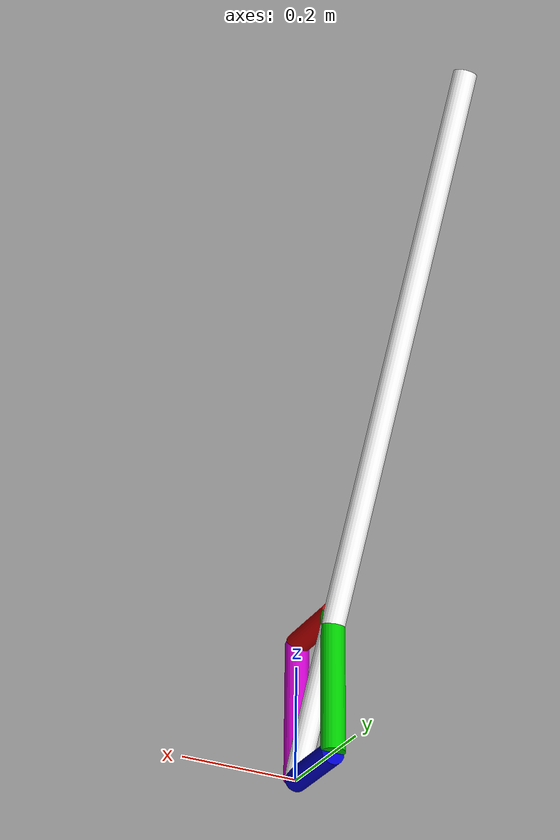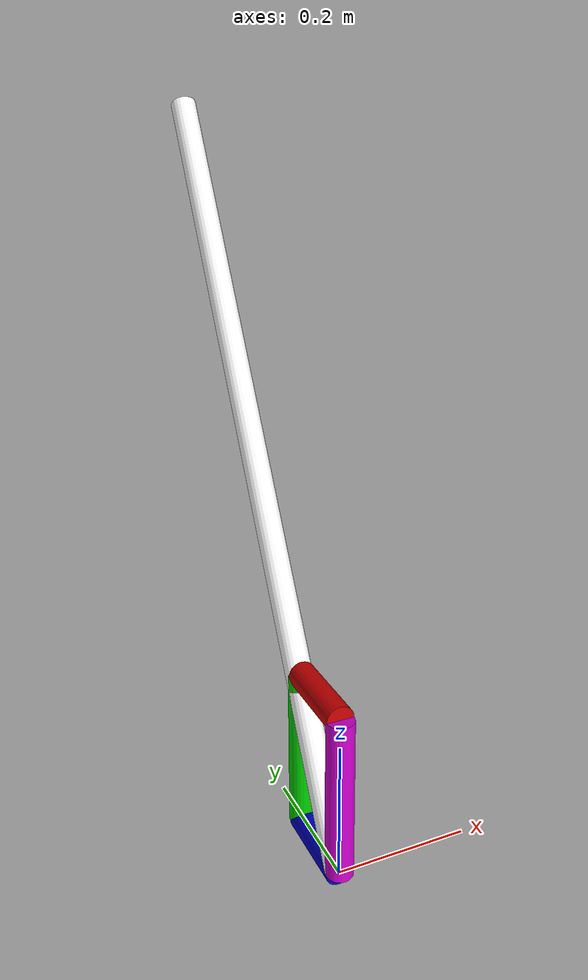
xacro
<?xml version="1.0"?>
<robot xmlns:xacro="http://www.ros.org/wiki/xacro" name="four_bar_elevator">
    <xacro:property name="theta" value="${pi/6}"/>
    <xacro:property name="L" value="1.2"/>
    <xacro:property name="b" value="0.127"/>
    <xacro:property name="h" value="0.243"/>

    <link name="base_link">
    </link>

    <link name="four_bar_base">
        <visual>
            <origin xyz="0 ${b/2} 0" rpy="${pi/2} 0 0" />
            <geometry>
                <cylinder radius="0.02" length="${b}" />
            </geometry>
            <material name="blue">
                <color rgba="0 0 .8 1" />
            </material>
        </visual>
    </link>

    <joint name="four_bar" type="revolute">
        <parent link="four_bar_base"/>
        <child link="link1"/>
        <origin xyz="0 0 0" rpy="0 0 0" />
        <axis xyz="1 0 0" />
        <limit lower="${-pi/2}" upper="${pi/2}" effort="0.5293" velocity="6.159937255" />
    </joint>

    <link name="link1">
        <visual>
            <origin xyz="0 0 ${h/2}" rpy="0 0 0" />
            <geometry>
                <cylinder radius="0.02" length="${h}" />
            </geometry>
            <material name="yellow">
                <color rgba=".8 0 .8 1" />
            </material>
        </visual>
    </link>

    <joint name="joint1" type="revolute">
        <parent link="four_bar_base"/>
        <child link="link2"/>
        <origin xyz="0 ${b} 0" rpy="0 0 0" />
        <axis xyz="1 0 0" />
        <limit lower="${-pi/2}" upper="${pi/2}" effort="0.5293" velocity="6.159937255" />
        <mimic joint="four_bar" multiplier="1" offset="0" />
    </joint>

    <link name="link2">
        <visual>
            <origin xyz="0 0 ${h/2}" rpy="0 0 0" />
            <geometry>
                <cylinder radius="0.02" length="${h}" />
            </geometry>
            <material name="green">
                <color rgba="0 .8 0 1" />
            </material>
        </visual>
    </link>

    <joint name="joint2" type="revolute">
        <parent link="link1"/>
        <child link="link3"/>
        <origin xyz="0 0 ${h}" rpy="0 0 0" />
        <axis xyz="1 0 0" />
        <limit lower="${-pi/2}" upper="${pi/2}" effort="0.5293" velocity="6.159937255" />
        <mimic joint="four_bar" multiplier="-1" offset="0" />
    </joint>

    <link name="link3">
        <visual>
            <origin xyz="0 ${b/2} 0" rpy="${pi/2} 0 0" />
            <geometry>
                <cylinder radius="0.02" length="${b}" />
            </geometry>
            <material name="red">
                <color rgba=".8 0 0 1" />
            </material>
        </visual>
    </link>

    <link name="elevator">
        <visual>
            <origin xyz="0 ${L*sin(theta)/2} ${L*cos(theta)/2}" rpy="0 ${theta} ${pi/2}"/>
            <geometry>
                <cylinder radius="0.02" length="${L}"/>
            </geometry>
            <material name="white">
                <color rgba="1 1 1 1"/>
            </material>
        </visual>
    </link>

    <joint name="elevator_leader" type="prismatic">
        <parent link="base_link"/>
        <child link="four_bar_base"/>
        <origin xyz="0 0 0" rpy="0 0 0"/>
        <axis xyz="0 ${theta} 1"/>
        <limit effort="1000.0" lower="0" upper="${L}" velocity="0.5"/>
    </joint>

    <joint name="elevator_to_base" type="fixed">
        <parent link="base_link"/>
        <child link="elevator"/>
    </joint>

</robot>
